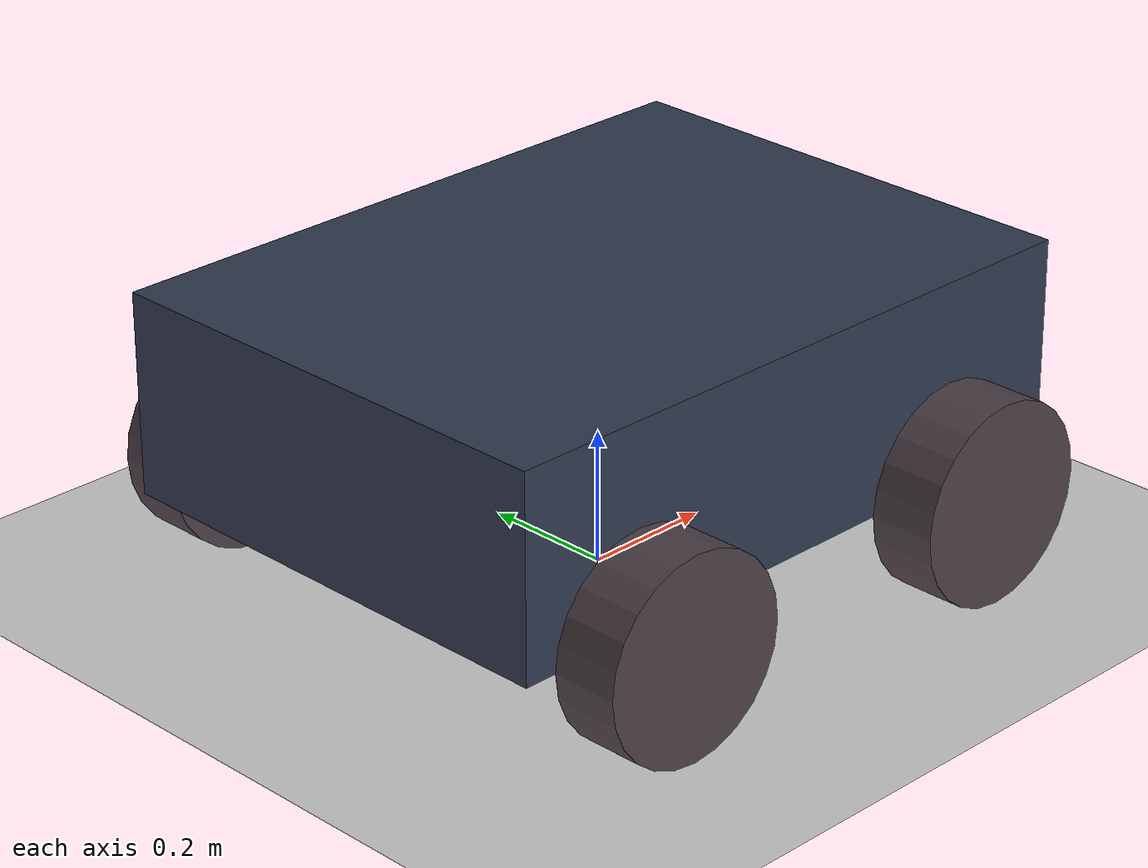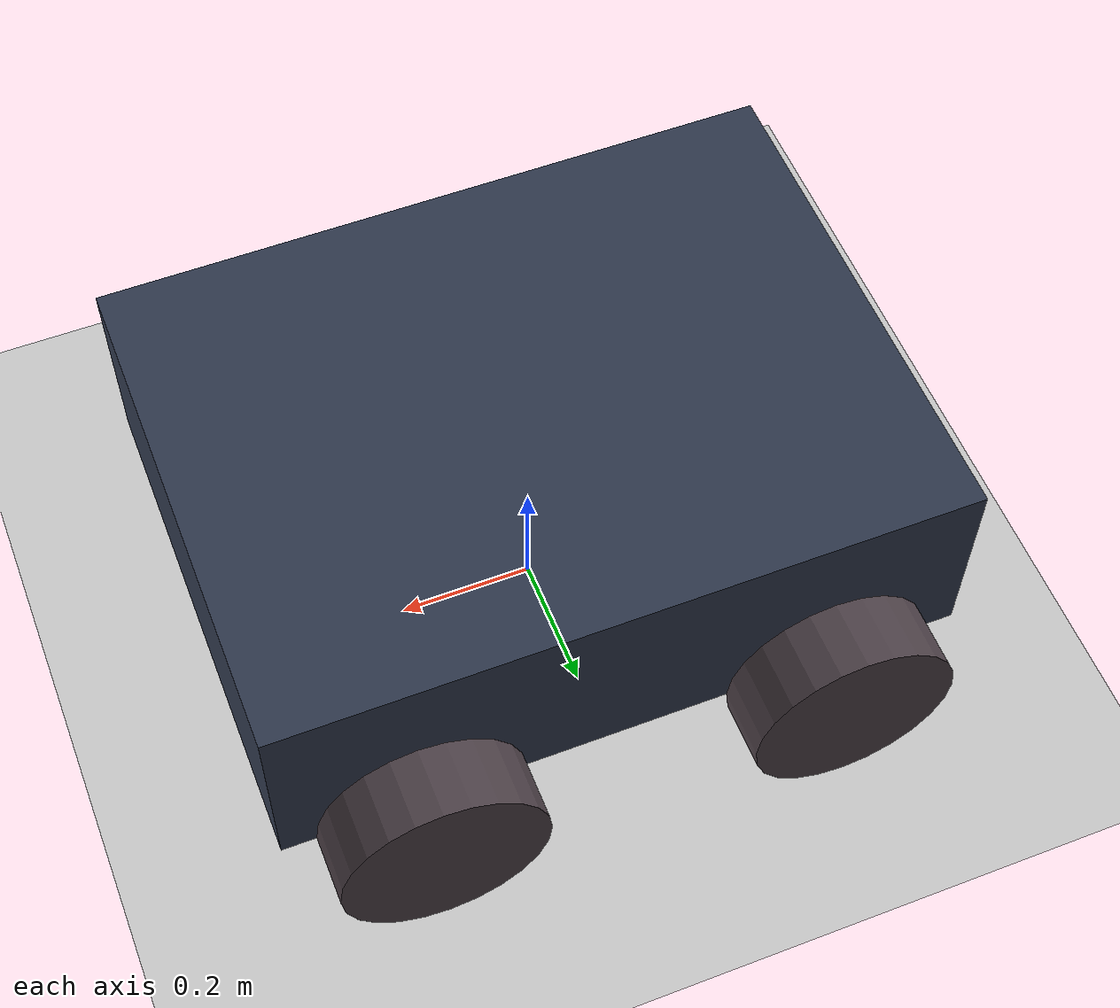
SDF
<sdf version='1.10'>
  <world name='mecanum_sdf'>
  <!-- remove this file later -->
    <physics name='1ms' type='ode'>
      <max_step_size>0.001</max_step_size>
      <real_time_factor>1</real_time_factor>
      <real_time_update_rate>1000</real_time_update_rate>
    </physics>
    <plugin name='gz::sim::systems::Physics' filename='gz-sim-physics-system'/>
    <plugin name='gz::sim::systems::UserCommands' filename='gz-sim-user-commands-system'/>
    <plugin name='gz::sim::systems::SceneBroadcaster' filename='gz-sim-scene-broadcaster-system'/>
    <plugin name='gz::sim::systems::Contact' filename='gz-sim-contact-system'/>
    <gravity>0 0 -9.8000000000000007</gravity>
    <magnetic_field>5.5644999999999998e-06 2.2875799999999999e-05 -4.2388400000000002e-05</magnetic_field>
    <atmosphere type='adiabatic'/>
    <scene>
      <ambient>0.400000006 0.400000006 0.400000006 1</ambient>
      <background>0.699999988 0.699999988 0.699999988 1</background>
      <shadows>true</shadows>
    </scene>
    <model name='ground_plane'>
      <static>true</static>
      <link name='link'>
        <collision name='collision'>
          <geometry>
            <plane>
              <normal>0 0 1</normal>
              <size>100 100</size>
            </plane>
          </geometry>
          <surface>
            <friction>
              <ode/>
            </friction>
            <bounce/>
            <contact/>
          </surface>
        </collision>
        <visual name='visual'>
          <geometry>
            <plane>
              <normal>0 0 1</normal>
              <size>100 100</size>
            </plane>
          </geometry>
          <material>
            <ambient>0.800000012 0.800000012 0.800000012 1</ambient>
            <diffuse>0.800000012 0.800000012 0.800000012 1</diffuse>
            <specular>0.800000012 0.800000012 0.800000012 1</specular>
          </material>
        </visual>
        <pose>0 0 0 0 0 0</pose>
        <inertial>
          <pose>0 0 0 0 0 0</pose>
          <mass>1</mass>
          <inertia>
            <ixx>1</ixx>
            <ixy>0</ixy>
            <ixz>0</ixz>
            <iyy>1</iyy>
            <iyz>0</iyz>
            <izz>1</izz>
          </inertia>
        </inertial>
        <enable_wind>false</enable_wind>
      </link>
      <pose>0 0 0 0 0 0</pose>
      <self_collide>false</self_collide>
    </model>
    <model name='binx'>
      <link name='base_footprint'>
        <inertial>
          <pose>0 0 0.29999999999999988 0 0 0</pose>
          <mass>1219.5</mass>
          <inertia>
            <ixx>66.310312500000066</ixx>
            <ixy>0</ixy>
            <ixz>0</ixz>
            <iyy>110.77125000000009</iyy>
            <iyz>0</iyz>
            <izz>158.7890625</izz>
          </inertia>
        </inertial>
        <collision name='base_footprint_fixed_joint_lump__body_link_collision'>
          <pose>0 0 0.29999999999999999 0 0 0</pose>
          <geometry>
            <box>
              <size>1 0.75 0.29999999999999999</size>
            </box>
          </geometry>
          <surface>
            <friction>
              <ode/>
            </friction>
            <bounce/>
            <contact/>
          </surface>
        </collision>
        <visual name='base_footprint_fixed_joint_lump__body_link_visual'>
          <pose>0 0 0.29999999999999999 0 0 0</pose>
          <geometry>
            <box>
              <size>1 0.75 0.29999999999999999</size>
            </box>
          </geometry>
          <material>
            <diffuse>0.187500015 0.222499996 0.30250001 1</diffuse>
            <ambient>0.187500015 0.222499996 0.30250001 1</ambient>
          </material>
        </visual>
        <pose>0 0 0 0 0 0</pose>
        <enable_wind>false</enable_wind>
      </link>
      <joint name='wheel1_joint' type='revolute'>
        <pose>0 0 0 0 0 0</pose>
        <parent>base_footprint</parent>
        <child>wheel1_link</child>
        <axis>
          <xyz>0 1 0</xyz>
          <limit>
            <lower>-inf</lower>
            <upper>inf</upper>
            <effort>50000</effort>
            <velocity>10</velocity>
            <stiffness>100000000</stiffness>
            <dissipation>1</dissipation>
          </limit>
          <dynamics>
            <spring_reference>0</spring_reference>
            <spring_stiffness>0</spring_stiffness>
            <damping>1</damping>
            <friction>1</friction>
          </dynamics>
        </axis>
      </joint>
      <link name='wheel1_link'>
        <pose>-0.29999999999999999 -0.42499999999999999 0.14999999999999999 -5.9359741576930959e-40 8.7504734570883811e-20 -2.5971292154427999e-59</pose>
        <inertial>
          <pose>0 0 0 1.5707949999999999 0 0</pose>
          <mass>19.155861183374999</mass>
          <inertia>
            <ixx>0.12371493680929679</ixx>
            <ixy>0</ixy>
            <ixz>0</ixz>
            <iyy>0.12371493680929679</iyy>
            <iyz>0</iyz>
            <izz>0.21550343831296881</izz>
          </inertia>
        </inertial>
        <collision name='wheel1_link_fixed_joint_lump__wheel1_collision_collision'>
          <pose>0 0 0 1.5709499999999998 0 0</pose>
          <geometry>
            <cylinder>
              <length>0.10000000000000001</length>
              <radius>0.14999999999999999</radius>
            </cylinder>
          </geometry>
          <surface>
            <friction>
              <ode/>
            </friction>
            <bounce/>
            <contact/>
          </surface>
        </collision>
        <visual name='wheel1_link_visual'>
          <pose>0 0 0 1.5707949999999999 0 0</pose>
          <geometry>
            <cylinder>
              <length>0.10000000000000001</length>
              <radius>0.14999999999999999</radius>
            </cylinder>
          </geometry>
          <material>
            <diffuse>0.296250015 0.248750001 0.275000006 1</diffuse>
            <ambient>0.296250015 0.248750001 0.275000006 1</ambient>
          </material>
        </visual>
        <enable_wind>false</enable_wind>
      </link>
      <joint name='wheel2_joint' type='revolute'>
        <pose>0 0 0 0 0 0</pose>
        <parent>base_footprint</parent>
        <child>wheel2_link</child>
        <axis>
          <xyz>0 1 0</xyz>
          <limit>
            <lower>-inf</lower>
            <upper>inf</upper>
            <effort>50000</effort>
            <velocity>10</velocity>
            <stiffness>100000000</stiffness>
            <dissipation>1</dissipation>
          </limit>
          <dynamics>
            <spring_reference>0</spring_reference>
            <spring_stiffness>0</spring_stiffness>
            <damping>1</damping>
            <friction>1</friction>
          </dynamics>
        </axis>
      </joint>
      <link name='wheel2_link'>
        <pose>-0.29999999999999999 0.42499999999999999 0.14999999999999999 -3.5763370998505024e-40 5.2720315207713641e-20 -9.4272809596579465e-60</pose>
        <inertial>
          <pose>0 0 0 1.5707949999999999 0 0</pose>
          <mass>19.155861183374999</mass>
          <inertia>
            <ixx>0.12371493680929679</ixx>
            <ixy>0</ixy>
            <ixz>0</ixz>
            <iyy>0.12371493680929679</iyy>
            <iyz>0</iyz>
            <izz>0.21550343831296881</izz>
          </inertia>
        </inertial>
        <collision name='wheel2_link_fixed_joint_lump__wheel2_collision_collision'>
          <pose>0 0 0 1.5709499999999998 0 0</pose>
          <geometry>
            <cylinder>
              <length>0.10000000000000001</length>
              <radius>0.14999999999999999</radius>
            </cylinder>
          </geometry>
          <surface>
            <friction>
              <ode/>
            </friction>
            <bounce/>
            <contact/>
          </surface>
        </collision>
        <visual name='wheel2_link_visual'>
          <pose>0 0 0 1.5707949999999999 0 0</pose>
          <geometry>
            <cylinder>
              <length>0.10000000000000001</length>
              <radius>0.14999999999999999</radius>
            </cylinder>
          </geometry>
          <material>
            <diffuse>0.296250015 0.248750001 0.275000006 1</diffuse>
            <ambient>0.296250015 0.248750001 0.275000006 1</ambient>
          </material>
        </visual>
        <enable_wind>false</enable_wind>
      </link>
      <joint name='wheel3_joint' type='revolute'>
        <pose>0 0 0 0 0 0</pose>
        <parent>base_footprint</parent>
        <child>wheel3_link</child>
        <axis>
          <xyz>0 1 0</xyz>
          <limit>
            <lower>-inf</lower>
            <upper>inf</upper>
            <effort>50000</effort>
            <velocity>10</velocity>
            <stiffness>100000000</stiffness>
            <dissipation>1</dissipation>
          </limit>
          <dynamics>
            <spring_reference>0</spring_reference>
            <spring_stiffness>0</spring_stiffness>
            <damping>1</damping>
            <friction>1</friction>
          </dynamics>
        </axis>
      </joint>
      <link name='wheel3_link'>
        <pose>0.29999999999999999 -0.42499999999999999 0.14999999999999999 3.107546977853061e-40 -4.5809679462833648e-20 -7.1177865485573071e-60</pose>
        <inertial>
          <pose>0 0 0 1.5707949999999999 0 0</pose>
          <mass>19.155861183374999</mass>
          <inertia>
            <ixx>0.12371493680929679</ixx>
            <ixy>0</ixy>
            <ixz>0</ixz>
            <iyy>0.12371493680929679</iyy>
            <iyz>0</iyz>
            <izz>0.21550343831296881</izz>
          </inertia>
        </inertial>
        <collision name='wheel3_link_fixed_joint_lump__wheel3_collision_collision'>
          <pose>0 0 0 1.5709499999999998 0 0</pose>
          <geometry>
            <cylinder>
              <length>0.10000000000000001</length>
              <radius>0.14999999999999999</radius>
            </cylinder>
          </geometry>
          <surface>
            <friction>
              <ode/>
            </friction>
            <bounce/>
            <contact/>
          </surface>
        </collision>
        <visual name='wheel3_link_visual'>
          <pose>0 0 0 1.5707949999999999 0 0</pose>
          <geometry>
            <cylinder>
              <length>0.10000000000000001</length>
              <radius>0.14999999999999999</radius>
            </cylinder>
          </geometry>
          <material>
            <diffuse>0.296250015 0.248750001 0.275000006 1</diffuse>
            <ambient>0.296250015 0.248750001 0.275000006 1</ambient>
          </material>
        </visual>
        <enable_wind>false</enable_wind>
      </link>
      <joint name='wheel4_joint' type='revolute'>
        <pose>0 0 0 0 0 0</pose>
        <parent>base_footprint</parent>
        <child>wheel4_link</child>
        <axis>
          <xyz>0 1 0</xyz>
          <limit>
            <lower>-inf</lower>
            <upper>inf</upper>
            <effort>50000</effort>
            <velocity>10</velocity>
            <stiffness>100000000</stiffness>
            <dissipation>1</dissipation>
          </limit>
          <dynamics>
            <spring_reference>0</spring_reference>
            <spring_stiffness>0</spring_stiffness>
            <damping>1</damping>
            <friction>1</friction>
          </dynamics>
        </axis>
      </joint>
      <link name='wheel4_link'>
        <pose>0.29999999999999999 0.42499999999999999 0.14999999999999999 -1.9063630006203417e-40 2.8102512567181822e-20 3.009265538105056e-36</pose>
        <inertial>
          <pose>0 0 0 1.5707949999999999 0 0</pose>
          <mass>19.155861183374999</mass>
          <inertia>
            <ixx>0.12371493680929679</ixx>
            <ixy>0</ixy>
            <ixz>0</ixz>
            <iyy>0.12371493680929679</iyy>
            <iyz>0</iyz>
            <izz>0.21550343831296881</izz>
          </inertia>
        </inertial>
        <collision name='wheel4_link_fixed_joint_lump__wheel4_collision_collision'>
          <pose>0 0 0 1.5709499999999998 0 0</pose>
          <geometry>
            <cylinder>
              <length>0.10000000000000001</length>
              <radius>0.14999999999999999</radius>
            </cylinder>
          </geometry>
          <surface>
            <friction>
              <ode/>
            </friction>
            <bounce/>
            <contact/>
          </surface>
        </collision>
        <visual name='wheel4_link_visual'>
          <pose>0 0 0 1.5707949999999999 0 0</pose>
          <geometry>
            <cylinder>
              <length>0.10000000000000001</length>
              <radius>0.14999999999999999</radius>
            </cylinder>
          </geometry>
          <material>
            <diffuse>0.296250015 0.248750001 0.275000006 1</diffuse>
            <ambient>0.296250015 0.248750001 0.275000006 1</ambient>
          </material>
        </visual>
        <enable_wind>false</enable_wind>
      </link>
      <plugin name='gz::sim::systems::MecanumDrive' filename='libgz-sim-mecanum-drive-system.so'>
        <update_rate>20</update_rate>
        <front_left_joint>wheel4_joint</front_left_joint>
        <front_right_joint>wheel3_joint</front_right_joint>
        <back_left_joint>wheel2_joint</back_left_joint>
        <back_right_joint>wheel1_joint</back_right_joint>
        <wheelbase>0.6</wheelbase>
        <wheel_separation>0.85</wheel_separation>
        <wheel_radius>0.15</wheel_radius>
        <max_linear_acceleration>10</max_linear_acceleration>
        <max_angular_acceleration>5</max_angular_acceleration>
        <topic>/cmd_vel</topic>
        <tf_topic>/tf</tf_topic>
        <odom_topic>/odom</odom_topic>
        <frame_id>odom</frame_id>
        <child_frame_id>base_footprint</child_frame_id>
        <odom_publisher_frequency>30</odom_publisher_frequency>
      </plugin>
      <plugin name='gz::sim::systems::JointStatePublisher' filename='gz-sim-joint-state-publisher-system'>
        <topic>joint_states</topic>
        <joint_name>wheel1_joint</joint_name>
        <joint_name>wheel2_joint</joint_name>
        <joint_name>wheel3_joint</joint_name>
        <joint_name>wheel4_joint</joint_name>
      </plugin>
      <plugin name='gz::sim::systems::Sensors' filename='gz-sim-sensors-system'>
        <render_engine>ogre2</render_engine>
      </plugin>
      <frame name='body_link_joint' attached_to='base_footprint'>
        <pose>0 0 0 0 0 0</pose>
      </frame>
      <frame name='body_link' attached_to='body_link_joint'>
        <pose>0 0 0 0 0 0</pose>
      </frame>
      <pose>-6.7525999265392873e-21 -4.0470866415996173e-15 7.1962208543790746e-06 5.2691997474724252e-10 -3.890830607923979e-19 -1.3567207023715524e-20</pose>
      <static>false</static>
      <self_collide>false</self_collide>
    </model>
    <light name='sun' type='directional'>
      <pose>0 0 10 0 0 0</pose>
      <cast_shadows>true</cast_shadows>
      <intensity>1</intensity>
      <direction>-0.5 0.10000000000000001 -0.90000000000000002</direction>
      <diffuse>0.800000012 0.800000012 0.800000012 1</diffuse>
      <specular>0.200000003 0.200000003 0.200000003 1</specular>
      <attenuation>
        <range>1000</range>
        <linear>0.01</linear>
        <constant>0.90000000000000002</constant>
        <quadratic>0.001</quadratic>
      </attenuation>
      <spot>
        <inner_angle>0</inner_angle>
        <outer_angle>0</outer_angle>
        <falloff>0</falloff>
      </spot>
    </light>
  </world>
</sdf>
